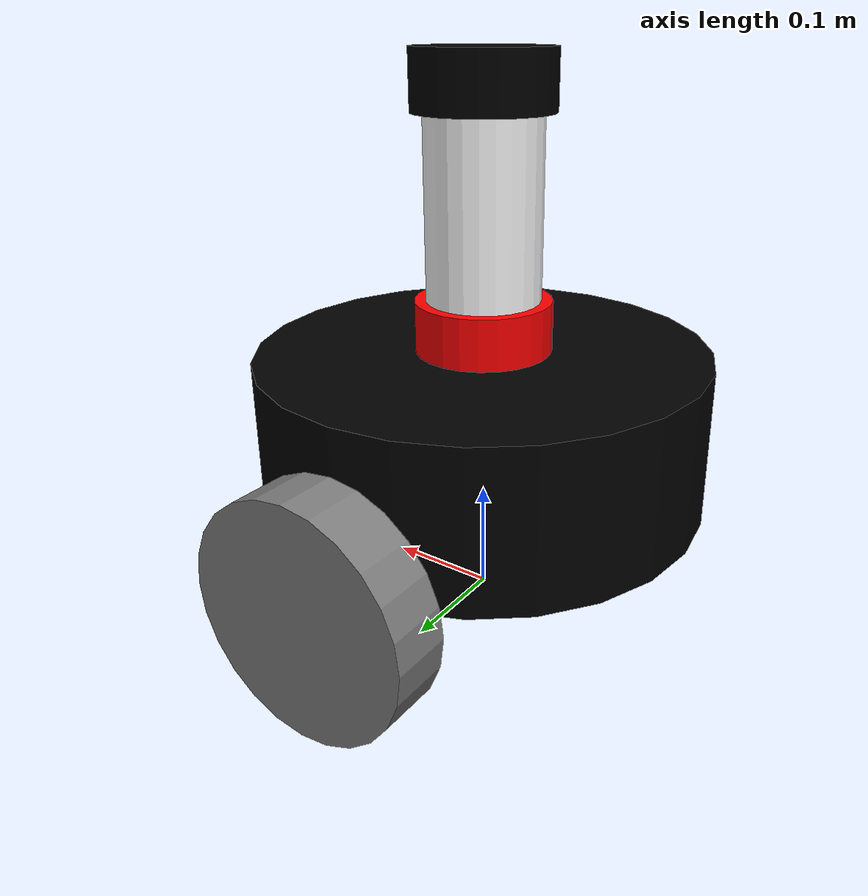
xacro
<?xml version="1.0"?>
<robot name="my_robot" xmlns:xacro="http://www.ros.org/wiki/xacro">

    <xacro:include filename="common_properties.xacro" />
    <xacro:include filename="mobile_base.xacro" />
    <xacro:include filename="lidar.xacro" />
    <xacro:include filename="mobile_base_gazebo.xacro" />

</robot>

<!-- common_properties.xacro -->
<robot xmlns:xacro="http://www.ros.org/wiki/xacro">

    <material name="black">
        <color rgba="0 0 0 1" />
    </material>

    <material name="white">
        <color rgba="1 1 1 1"/>
    </material>

    <material name="grey">
        <color rgba="0.5 0.5 0.5 1" />
    </material>

    <material name="red">
        <color rgba="1 0 0 1" />
    </material>

    <xacro:macro name="cylinder_inertia" params="m r h xyz rpy">
        <inertial>
            <origin xyz="${xyz}" rpy="${rpy}" />
            <mass value="${m}" />
            <inertia ixx="${(m/12) * (3*r*r + h*h)}" ixy="0" ixz="0"
                     iyy="${(m/12) * (3*r*r + h*h)}" iyz="0"
                     izz="${(m/2) * (r*r)}" />
        </inertial>
    </xacro:macro>

    <xacro:macro name="sphere_inertia" params="m r xyz rpy">
        <inertial>
            <origin xyz="${xyz}" rpy="${rpy}" />
            <mass value="${m}" />
            <inertia ixx="${(2/5) * m * r * r}" ixy="0" ixz="0"
                     iyy="${(2/5) * m * r * r}" iyz="0"
                     izz="${(2/5) * m * r * r}" />
        </inertial>
    </xacro:macro>

</robot>

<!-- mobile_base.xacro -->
<robot xmlns:xacro="http://www.ros.org/wiki/xacro">

    <xacro:property name="base_diameter" value="0.4" />
    <xacro:property name="base_length" value="0.14" /> <!-- Length - wysokosc podstawy -->
    <xacro:property name="wheel_radius" value="0.1" />
    <xacro:property name="wheel_length" value="0.05" />
    <xacro:property name="turret_radius" value="0.05" />
    <xacro:property name="turret_length" value="0.2" />

    <link name="base_footprint" />

    <link name="base_link">
        <visual>
            <geometry>
                <cylinder radius="${base_diameter / 2.0}" length="${base_length}"/>
            </geometry>
            <origin xyz="0 0 ${base_length / 2.0}" rpy="0 0 0" />
            <material name="black" />
        </visual>
        <collision>
            <geometry>
                <cylinder radius="${base_diameter / 2.0}" length="${base_length}"/>
            </geometry>
            <origin xyz="0 0 ${base_length / 2.0}" rpy="0 0 0" />
        </collision>
        <xacro:cylinder_inertia m="5.0" r="${2*base_diameter / 2.0}" h="${2*base_length}"
                                xyz="0 0 ${base_length / 2.0}" rpy="0 0 0" />
    </link>

    <link name="turret_link">
        <visual>
            <geometry>
                <cylinder radius="${turret_radius}" length="${turret_length}"/>
            </geometry>
            <origin xyz="0 0 0.1" rpy="0 0 0"/>
            <material name="white"/>
        </visual>
        <collision>
            <geometry>
                <cylinder radius="${turret_radius}" length="${turret_length}"/>
            </geometry>
            <origin xyz="0 0 0.1" rpy="0 0 0"/>
        </collision>
        <xacro:cylinder_inertia m="1.0" r="${turret_radius}" h="${turret_length}"
                                xyz="0 0 0.1" rpy="0 0 0" />
    </link>

    <link name="turret_top_link">
        <visual>
            <geometry>
                <cylinder radius="${turret_radius + 0.01}" length="${turret_radius}"/>
            </geometry>
            <origin xyz="0 0 0.05" rpy="0 0 0"/>
            <material name="black"/>
        </visual>
        <collision>
            <geometry>
                <cylinder radius="${turret_radius + 0.01}" length="${turret_radius}"/>
            </geometry>
            <origin xyz="0 0 0.05" rpy="0 0 0"/>
        </collision>
        <xacro:cylinder_inertia m="0.2" r="${turret_radius + 0.01}" h="${turret_radius}"
                                xyz="0 0 0.05" rpy="0 0 0" />
    </link>

    <xacro:macro name="wheel_link" params="prefix">
        <link name="${prefix}_wheel_link">
            <visual>
                <geometry>
                    <cylinder radius="${wheel_radius}" length="${wheel_length}" />
                </geometry>
                <origin xyz="0 0 0" rpy="${pi / 2.0} 0 0" />
                <material name="grey" />
            </visual>
            <collision>
                <geometry>
                    <cylinder radius="${wheel_radius}" length="${wheel_length}" />
                </geometry>
                <origin xyz="0 0 0" rpy="${pi / 2.0} 0 0" />
            </collision>
            <xacro:cylinder_inertia m="2.0" r="${2*wheel_radius}" h="${2*wheel_length}"
                                    xyz="0 0 0" rpy="${pi / 2.0} 0 0" />
        </link>
    </xacro:macro>

    <xacro:wheel_link prefix="right" />
    <xacro:wheel_link prefix="left" />

    <link name="caster_wheel_link">
        <visual>
            <geometry>
                <sphere radius="${(wheel_radius) / 2.0}" />
            </geometry>
            <origin xyz="0 0 0" rpy="0 0 0" />
            <material name="grey" />
        </visual>
        <collision>
            <geometry>
                <sphere radius="${(wheel_radius + 0.02) / 2.0}" />
            </geometry>
            <origin xyz="0 0 0" rpy="0 0 0" />
        </collision>
        <xacro:sphere_inertia m="8.0" r="${2*(wheel_radius + 0.02) / 2.0}"
                              xyz="0 0 0" rpy="0 0 0" />
    </link>

    <joint name="base_joint" type="fixed">
        <parent link="base_footprint" />
        <child link="base_link" />
        <origin xyz="0 0 ${wheel_radius}" rpy="0 0 0"/>
    </joint>

    <joint name="base_turret_joint" type="fixed">
        <parent link="base_link"/>
        <child link="turret_link"/>
        <origin xyz="0 0 ${base_length}" rpy="0 0 0"/>
    </joint>

    <joint name="turret_top_joint" type="fixed">
        <parent link="turret_link"/>
        <child link="turret_top_link"/>
        <origin xyz="0 0 0.175" rpy="0 0 0"/>
    </joint>

    <joint name="base_right_wheel_joint" type="continuous">
        <parent link="base_link" />
        <child link="right_wheel_link" />
        <origin xyz="0 ${-(base_diameter + wheel_length) / 2.0} 0" rpy="0 0 0" />
        <axis xyz="0 1 0" />
    </joint>

    <joint name="base_left_wheel_joint" type="continuous">
        <parent link="base_link" />
        <child link="left_wheel_link" />
        <origin xyz="0 ${(base_diameter + wheel_length) / 2.0} 0" rpy="0 0 0" />
        <axis xyz="0 1 0" />
    </joint>

    <joint name="base_caster_wheel_joint" type="fixed">
        <parent link="base_link" />
        <child link="caster_wheel_link" />
        <origin xyz="${base_diameter / 3.0} 0 ${-wheel_radius / 2.0}" rpy="0 0 0" />
    </joint>

</robot>

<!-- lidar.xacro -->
<robot xmlns:xacro="http://www.ros.org/wiki/xacro" >

    <joint name="laser_joint" type="fixed">
        <parent link="base_link"/>
        <child link="laser_frame"/>
        <origin xyz="0 0 0.16" rpy="0 0 0"/>
    </joint>

    <link name="laser_frame">
        <visual>
            <geometry>
                <cylinder radius="0.06" length="0.05"/>
            </geometry>
            <material name="red"/>
        </visual>
        <collision>
            <geometry>
                <cylinder radius="0.06" length="0.05"/>
            </geometry>
        </collision>
        <xacro:cylinder_inertia m="0.1" r="0.06" h="0.05"
                                xyz="0 0 0.16" rpy="0 0 0"/>
    </link>

    <gazebo reference="laser_frame">
        <material>Gazebo/Red</material>

        <sensor name="laser" type="ray">
            <pose> 0 0 0 0 0 0 </pose>
            <visualize>true</visualize>
            <update_rate>10</update_rate>
            <ray>
                <scan>
                    <horizontal>
                        <samples>360</samples>
                        <min_angle>-3.14</min_angle>
                        <max_angle>3.14</max_angle>
                    </horizontal>
                </scan>
                <range>
                    <min>0.3</min>
                    <max>12</max>
                </range>
            </ray>
            <plugin name="laser_controller" filename="libgazebo_ros_ray_sensor.so">
                <ros>
                    <argument>~/out:=scan</argument>
                </ros>
                <output_type>sensor_msgs/LaserScan</output_type>
                <frame_name>laser_frame</frame_name>
            </plugin>
        </sensor>
    </gazebo>

</robot>
